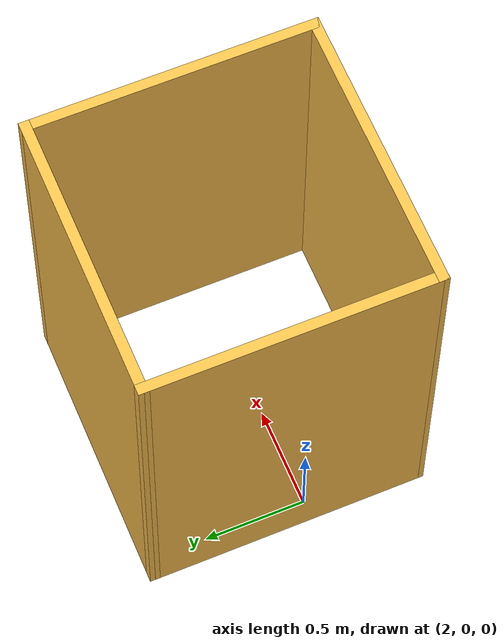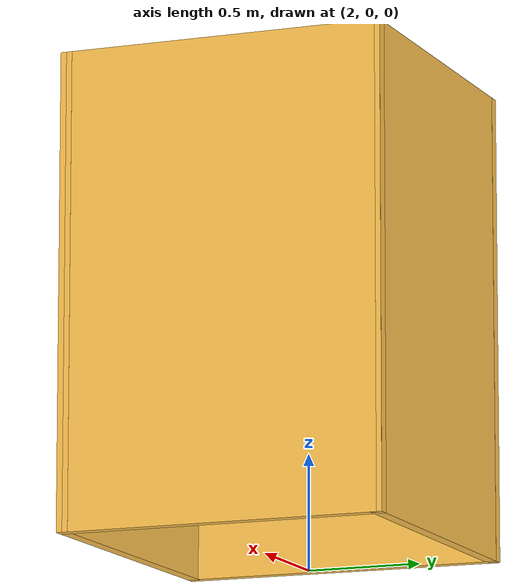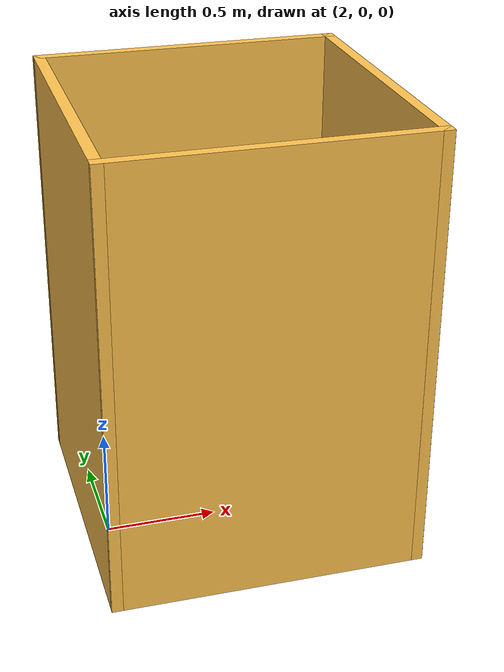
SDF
<?xml version='1.0'?>
<sdf version='1.7'>
  <model name='corridor'>
    <pose>1.65006 0.118006 0 0 -0 0</pose>
    <link name='Wall_11'>
      <collision name='Wall_11_Collision'>
        <geometry>
          <box>
            <size>1.39701 0.05 2</size>
          </box>
        </geometry>
        <pose>0 0 1 0 -0 0</pose>
      </collision>
      <visual name='Wall_11_Visual'>
        <pose>0 0 1 0 -0 0</pose>
        <geometry>
          <box>
            <size>1.39701 0.05 2</size>
          </box>
        </geometry>
        <material>
          <script>
            <uri>file://media/materials/scripts/gazebo.material</uri>
            <name>Gazebo/Grey</name>
          </script>
          <ambient>1 0.764706 0.305882 1</ambient>
        </material>
        <meta>
          <layer>0</layer>
        </meta>
      </visual>
      <pose>0.951435 0.674994 0 0 -0 -0.004454</pose>
    </link>
    <link name='Wall_12'>
      <collision name='Wall_12_Collision'>
        <geometry>
          <box>
            <size>1.40025 0.05 2</size>
          </box>
        </geometry>
        <pose>0 0 1 0 -0 0</pose>
      </collision>
      <visual name='Wall_12_Visual'>
        <pose>0 0 1 0 -0 0</pose>
        <geometry>
          <box>
            <size>1.40025 0.05 2</size>
          </box>
        </geometry>
        <material>
          <script>
            <uri>file://media/materials/scripts/gazebo.material</uri>
            <name>Gazebo/Grey</name>
          </script>
          <ambient>1 0.764706 0.305882 1</ambient>
        </material>
        <meta>
          <layer>0</layer>
        </meta>
      </visual>
      <pose>1.62494 -0.003006 0 0 -0 -1.5708</pose>
    </link>
    <link name='Wall_13'>
      <collision name='Wall_13_Collision'>
        <geometry>
          <box>
            <size>1.39702 0.05 2</size>
          </box>
        </geometry>
        <pose>0 0 1 0 -0 0</pose>
      </collision>
      <visual name='Wall_13_Visual'>
        <pose>0 0 1 0 -0 0</pose>
        <geometry>
          <box>
            <size>1.39702 0.05 2</size>
          </box>
        </geometry>
        <material>
          <script>
            <uri>file://media/materials/scripts/gazebo.material</uri>
            <name>Gazebo/Grey</name>
          </script>
          <ambient>1 0.764706 0.305882 1</ambient>
        </material>
        <meta>
          <layer>0</layer>
        </meta>
      </visual>
      <pose>0.951435 -0.674506 0 0 -0 3.1364</pose>
    </link>
    <link name='Wall_14'>
      <collision name='Wall_14_Collision'>
        <geometry>
          <box>
            <size>1.39928 0.05 2</size>
          </box>
        </geometry>
        <pose>0 0 1 0 -0 0</pose>
      </collision>
      <visual name='Wall_14_Visual'>
        <pose>0 0 1 0 -0 0</pose>
        <geometry>
          <box>
            <size>1.39928 0.05 2</size>
          </box>
        </geometry>
        <material>
          <script>
            <uri>file://media/materials/scripts/gazebo.material</uri>
            <name>Gazebo/Grey</name>
          </script>
          <ambient>1 0.764706 0.305882 1</ambient>
        </material>
        <meta>
          <layer>0</layer>
        </meta>
      </visual>
      <pose>0.277935 0.003494 0 0 -0 1.5708</pose>
    </link>
    <static>1</static>
  </model>
</sdf>
